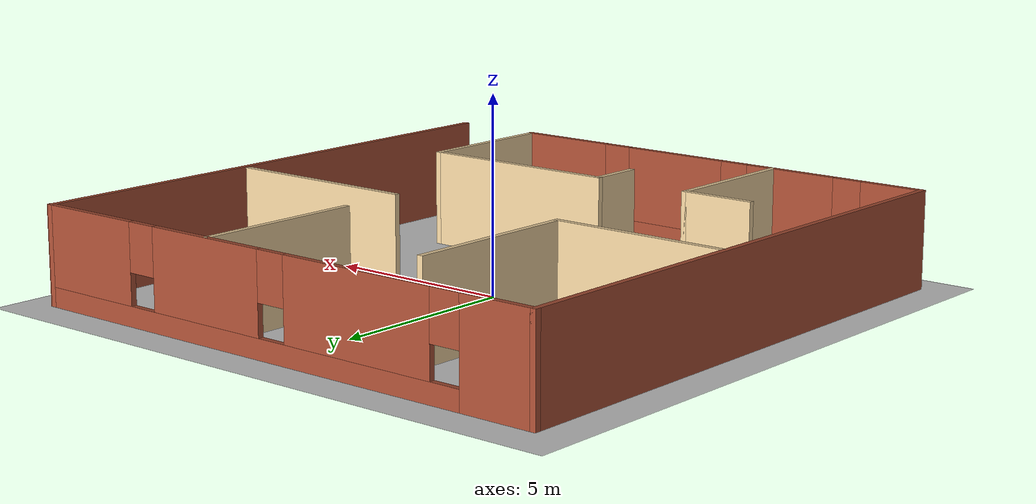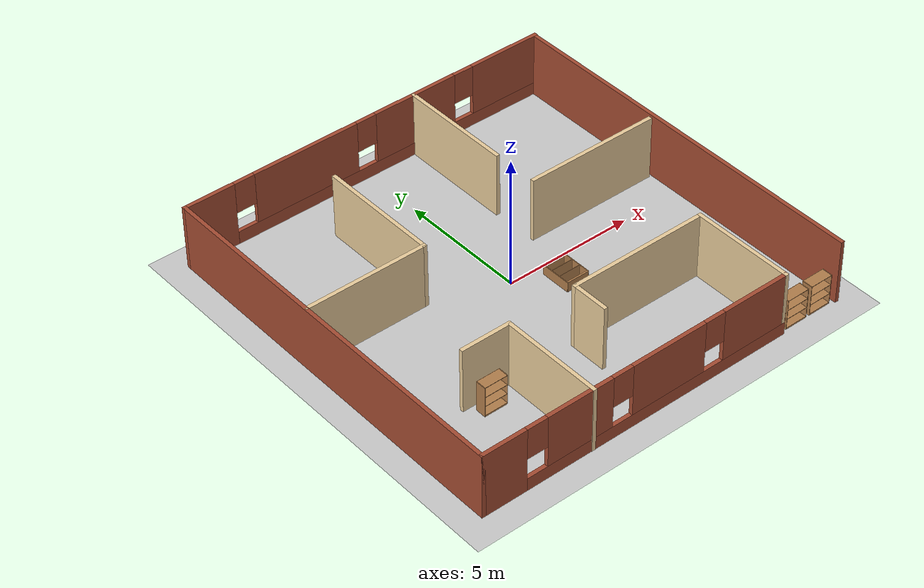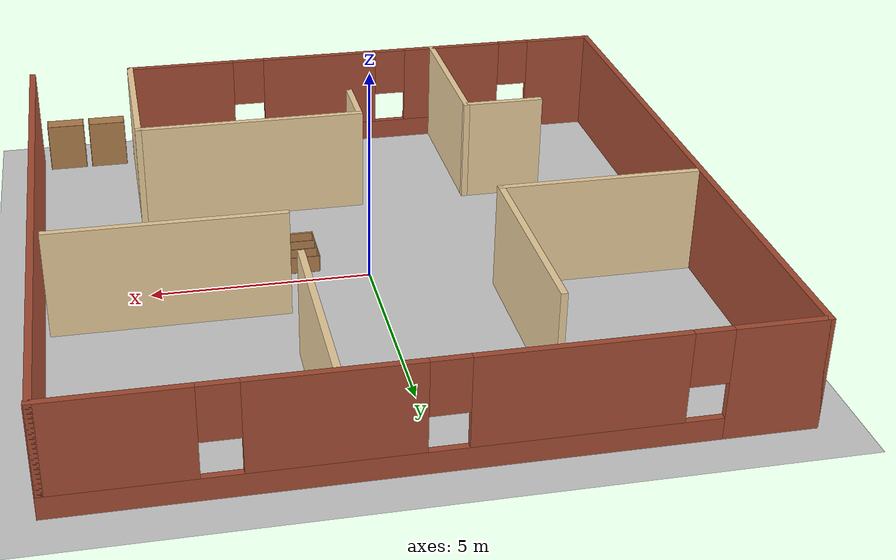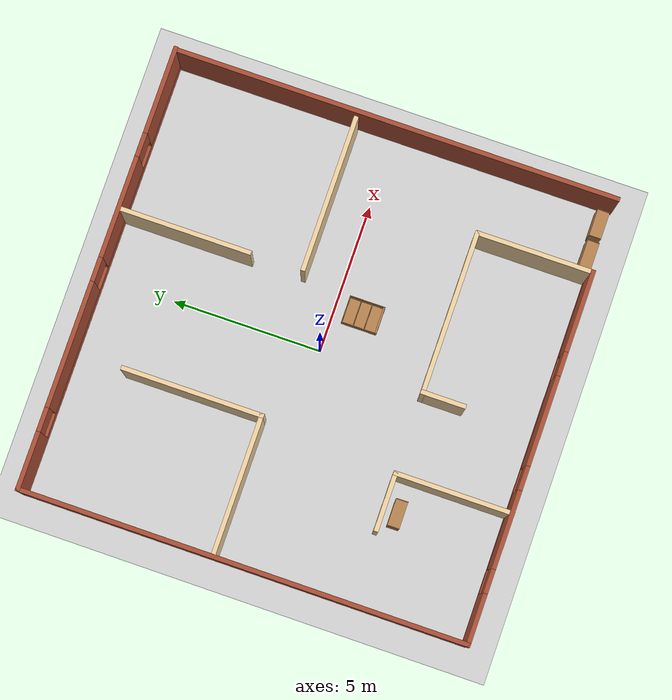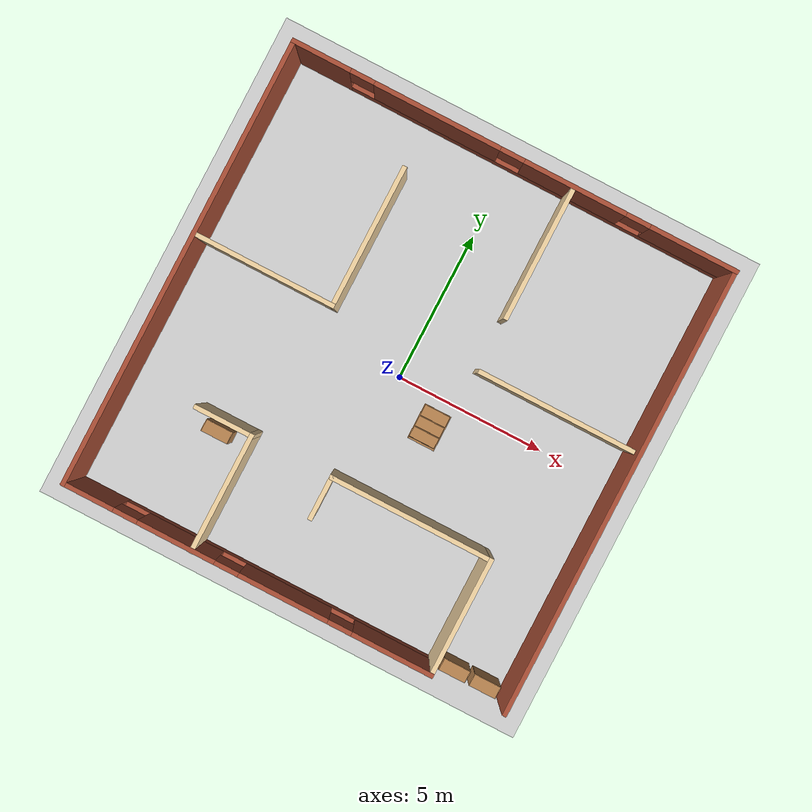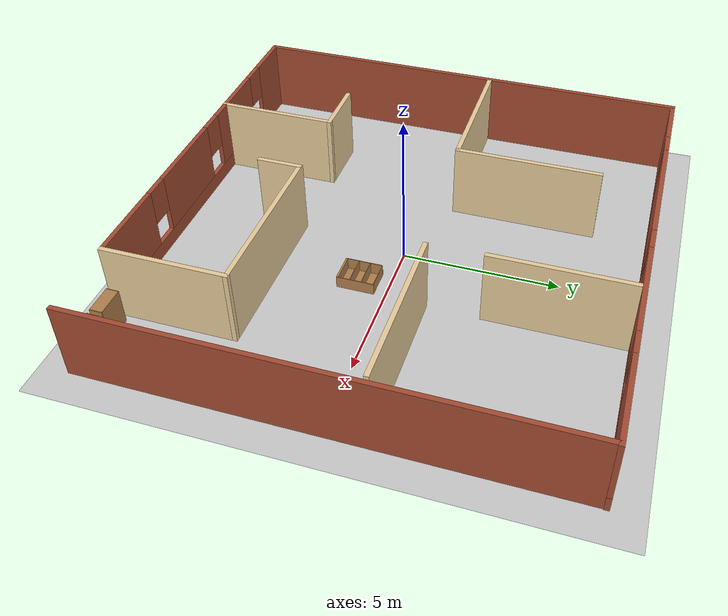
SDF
<sdf version="1.7">
 <world name="default">
  <model name="ground_plane">
   <static>1</static>
   <link name="link">
    <collision name="collision">
     <geometry><plane><normal>0 0 1</normal><size>100 100</size></plane></geometry>
     <surface>
      <contact><collide_bitmask>65535</collide_bitmask></contact>
      <friction><ode><mu>100</mu><mu2>50</mu2></ode></friction>
     </surface>
    </collision>
    <visual name="visual">
     <cast_shadows>0</cast_shadows>
     <geometry><plane><normal>0 0 1</normal><size>100 100</size></plane></geometry>
     <material>
      <script><uri>file://media/materials/scripts/gazebo.material</uri><name>Gazebo/Grey</name></script>
     </material>
    </visual>
   </link>
  </model>
  <model name="bookshelf">
   <static>1</static>
   <link name="link">
    <inertial><mass>1</mass></inertial>
    <collision name="back">
     <pose>0 0.005 0.6 0 -0 0</pose>
     <geometry><box><size>0.9 0.01 1.2</size></box></geometry>
    </collision>
    <visual name="visual1">
     <pose>0 0.005 0.6 0 -0 0</pose>
     <geometry><box><size>0.9 0.01 1.2</size></box></geometry>
     <material>
      <script><uri>file://media/materials/scripts/gazebo.material</uri><name>Gazebo/Wood</name></script>
     </material>
    </visual>
    <collision name="left_side">
     <pose>0.45 -0.195 0.6 0 -0 0</pose>
     <geometry><box><size>0.02 0.4 1.2</size></box></geometry>
    </collision>
    <visual name="visual2">
     <pose>0.45 -0.195 0.6 0 -0 0</pose>
     <geometry><box><size>0.02 0.4 1.2</size></box></geometry>
     <material>
      <script><uri>file://media/materials/scripts/gazebo.material</uri><name>Gazebo/Wood</name></script>
     </material>
    </visual>
    <collision name="right_side">
     <pose>-0.45 -0.195 0.6 0 -0 0</pose>
     <geometry><box><size>0.02 0.4 1.2</size></box></geometry>
    </collision>
    <visual name="visual3">
     <pose>-0.45 -0.195 0.6 0 -0 0</pose>
     <geometry><box><size>0.02 0.4 1.2</size></box></geometry>
     <material>
      <script><uri>file://media/materials/scripts/gazebo.material</uri><name>Gazebo/Wood</name></script>
     </material>
    </visual>
    <collision name="bottom">
     <pose>0 -0.195 0.03 0 -0 0</pose>
     <geometry><box><size>0.88 0.4 0.06</size></box></geometry>
    </collision>
    <visual name="visual4">
     <pose>0 -0.195 0.03 0 -0 0</pose>
     <geometry><box><size>0.88 0.4 0.06</size></box></geometry>
     <material>
      <script><uri>file://media/materials/scripts/gazebo.material</uri><name>Gazebo/Wood</name></script>
     </material>
    </visual>
    <collision name="top">
     <pose>0 -0.195 1.19 0 -0 0</pose>
     <geometry><box><size>0.88 0.4 0.02</size></box></geometry>
    </collision>
    <visual name="visual5">
     <pose>0 -0.195 1.19 0 -0 0</pose>
     <geometry><box><size>0.88 0.4 0.02</size></box></geometry>
     <material>
      <script><uri>file://media/materials/scripts/gazebo.material</uri><name>Gazebo/Wood</name></script>
     </material>
    </visual>
    <collision name="low_shelf">
     <pose>0 -0.195 0.43 0 -0 0</pose>
     <geometry><box><size>0.88 0.4 0.02</size></box></geometry>
    </collision>
    <visual name="visual6">
     <pose>0 -0.195 0.43 0 -0 0</pose>
     <geometry><box><size>0.88 0.4 0.02</size></box></geometry>
     <material>
      <script><uri>file://media/materials/scripts/gazebo.material</uri><name>Gazebo/Wood</name></script>
     </material>
    </visual>
    <collision name="high_shelf">
     <pose>0 -0.195 0.8 0 -0 0</pose>
     <geometry><box><size>0.88 0.4 0.02</size></box></geometry>
    </collision>
    <visual name="visual7">
     <pose>0 -0.195 0.8 0 -0 0</pose>
     <geometry><box><size>0.88 0.4 0.02</size></box></geometry>
     <material>
      <script><uri>file://media/materials/scripts/gazebo.material</uri><name>Gazebo/Wood</name></script>
     </material>
    </visual>
   </link>
   <pose>5.65 -7 0 0 -0 0</pose>
  </model>
  <model name="bookshelf_0">
   <static>1</static>
   <link name="link">
    <inertial><mass>1</mass></inertial>
    <collision name="back">
     <pose>0 0.005 0.6 0 -0 0</pose>
     <geometry><box><size>0.9 0.01 1.2</size></box></geometry>
    </collision>
    <visual name="visual1">
     <pose>0 0.005 0.6 0 -0 0</pose>
     <geometry><box><size>0.9 0.01 1.2</size></box></geometry>
     <material>
      <script><uri>file://media/materials/scripts/gazebo.material</uri><name>Gazebo/Wood</name></script>
     </material>
    </visual>
    <collision name="left_side">
     <pose>0.45 -0.195 0.6 0 -0 0</pose>
     <geometry><box><size>0.02 0.4 1.2</size></box></geometry>
    </collision>
    <visual name="visual2">
     <pose>0.45 -0.195 0.6 0 -0 0</pose>
     <geometry><box><size>0.02 0.4 1.2</size></box></geometry>
     <material>
      <script><uri>file://media/materials/scripts/gazebo.material</uri><name>Gazebo/Wood</name></script>
     </material>
    </visual>
    <collision name="right_side">
     <pose>-0.45 -0.195 0.6 0 -0 0</pose>
     <geometry><box><size>0.02 0.4 1.2</size></box></geometry>
    </collision>
    <visual name="visual3">
     <pose>-0.45 -0.195 0.6 0 -0 0</pose>
     <geometry><box><size>0.02 0.4 1.2</size></box></geometry>
     <material>
      <script><uri>file://media/materials/scripts/gazebo.material</uri><name>Gazebo/Wood</name></script>
     </material>
    </visual>
    <collision name="bottom">
     <pose>0 -0.195 0.03 0 -0 0</pose>
     <geometry><box><size>0.88 0.4 0.06</size></box></geometry>
    </collision>
    <visual name="visual4">
     <pose>0 -0.195 0.03 0 -0 0</pose>
     <geometry><box><size>0.88 0.4 0.06</size></box></geometry>
     <material>
      <script><uri>file://media/materials/scripts/gazebo.material</uri><name>Gazebo/Wood</name></script>
     </material>
    </visual>
    <collision name="top">
     <pose>0 -0.195 1.19 0 -0 0</pose>
     <geometry><box><size>0.88 0.4 0.02</size></box></geometry>
    </collision>
    <visual name="visual5">
     <pose>0 -0.195 1.19 0 -0 0</pose>
     <geometry><box><size>0.88 0.4 0.02</size></box></geometry>
     <material>
      <script><uri>file://media/materials/scripts/gazebo.material</uri><name>Gazebo/Wood</name></script>
     </material>
    </visual>
    <collision name="low_shelf">
     <pose>0 -0.195 0.43 0 -0 0</pose>
     <geometry><box><size>0.88 0.4 0.02</size></box></geometry>
    </collision>
    <visual name="visual6">
     <pose>0 -0.195 0.43 0 -0 0</pose>
     <geometry><box><size>0.88 0.4 0.02</size></box></geometry>
     <material>
      <script><uri>file://media/materials/scripts/gazebo.material</uri><name>Gazebo/Wood</name></script>
     </material>
    </visual>
    <collision name="high_shelf">
     <pose>0 -0.195 0.8 0 -0 0</pose>
     <geometry><box><size>0.88 0.4 0.02</size></box></geometry>
    </collision>
    <visual name="visual7">
     <pose>0 -0.195 0.8 0 -0 0</pose>
     <geometry><box><size>0.88 0.4 0.02</size></box></geometry>
     <material>
      <script><uri>file://media/materials/scripts/gazebo.material</uri><name>Gazebo/Wood</name></script>
     </material>
    </visual>
   </link>
   <pose>6.7 -7 0 0 -0 0</pose>
  </model>
  <model name="gMaze7">
   <link name="Wall_0">
    <pose>0 7.42919 0 0 -0 0</pose>
    <visual name="Wall_0_Visual_0">
     <pose>-6.50945 0 1.25 0 -0 0</pose>
     <geometry><box><size>1.98109 0.15 2.5</size></box></geometry>
     <material>
      <script><uri>file://media/materials/scripts/gazebo.material</uri><name>Gazebo/Bricks</name></script>
      <ambient>1 1 1 1</ambient>
     </material>
     <meta><layer>0</layer></meta>
    </visual>
    <collision name="Wall_0_Collision_0">
     <geometry><box><size>1.98109 0.15 2.5</size></box></geometry>
     <pose>-6.50945 0 1.25 0 -0 0</pose>
    </collision>
    <visual name="Wall_0_Visual_1">
     <pose>0.990545 0 0.25 0 -0 0</pose>
     <geometry><box><size>13.0189 0.15 0.5</size></box></geometry>
     <material>
      <script><uri>file://media/materials/scripts/gazebo.material</uri><name>Gazebo/Bricks</name></script>
      <ambient>1 1 1 1</ambient>
     </material>
     <meta><layer>0</layer></meta>
    </visual>
    <collision name="Wall_0_Collision_1">
     <geometry><box><size>13.0189 0.15 0.5</size></box></geometry>
     <pose>0.990545 0 0.25 0 -0 0</pose>
    </collision>
    <visual name="Wall_0_Visual_2">
     <pose>-2.60363 0 1.5 0 -0 0</pose>
     <geometry><box><size>4.23056 0.15 2</size></box></geometry>
     <material>
      <script><uri>file://media/materials/scripts/gazebo.material</uri><name>Gazebo/Bricks</name></script>
      <ambient>1 1 1 1</ambient>
     </material>
     <meta><layer>0</layer></meta>
    </visual>
    <collision name="Wall_0_Collision_2">
     <geometry><box><size>4.23056 0.15 2</size></box></geometry>
     <pose>-2.60363 0 1.5 0 -0 0</pose>
    </collision>
    <visual name="Wall_0_Visual_3">
     <pose>2.02238 0 1.5 0 -0 0</pose>
     <geometry><box><size>3.42145 0.15 2</size></box></geometry>
     <material>
      <script><uri>file://media/materials/scripts/gazebo.material</uri><name>Gazebo/Bricks</name></script>
      <ambient>1 1 1 1</ambient>
     </material>
     <meta><layer>0</layer></meta>
    </visual>
    <collision name="Wall_0_Collision_3">
     <geometry><box><size>3.42145 0.15 2</size></box></geometry>
     <pose>2.02238 0 1.5 0 -0 0</pose>
    </collision>
    <visual name="Wall_0_Visual_4">
     <pose>6.01655 0 1.5 0 -0 0</pose>
     <geometry><box><size>2.9669 0.15 2</size></box></geometry>
     <material>
      <script><uri>file://media/materials/scripts/gazebo.material</uri><name>Gazebo/Bricks</name></script>
      <ambient>1 1 1 1</ambient>
     </material>
     <meta><layer>0</layer></meta>
    </visual>
    <collision name="Wall_0_Collision_4">
     <geometry><box><size>2.9669 0.15 2</size></box></geometry>
     <pose>6.01655 0 1.5 0 -0 0</pose>
    </collision>
    <visual name="Wall_0_Visual_5">
     <pose>-5.11891 0 1.9 0 -0 0</pose>
     <geometry><box><size>0.8 0.15 1.2</size></box></geometry>
     <material>
      <script><uri>file://media/materials/scripts/gazebo.material</uri><name>Gazebo/Bricks</name></script>
      <ambient>1 1 1 1</ambient>
     </material>
     <meta><layer>0</layer></meta>
    </visual>
    <collision name="Wall_0_Collision_5">
     <geometry><box><size>0.8 0.15 1.2</size></box></geometry>
     <pose>-5.11891 0 1.9 0 -0 0</pose>
    </collision>
    <visual name="Wall_0_Visual_6">
     <pose>-0.088347 0 1.9 0 -0 0</pose>
     <geometry><box><size>0.8 0.15 1.2</size></box></geometry>
     <material>
      <script><uri>file://media/materials/scripts/gazebo.material</uri><name>Gazebo/Bricks</name></script>
      <ambient>1 1 1 1</ambient>
     </material>
     <meta><layer>0</layer></meta>
    </visual>
    <collision name="Wall_0_Collision_6">
     <geometry><box><size>0.8 0.15 1.2</size></box></geometry>
     <pose>-0.088347 0 1.9 0 -0 0</pose>
    </collision>
    <visual name="Wall_0_Visual_7">
     <pose>4.1331 0 1.9 0 -0 0</pose>
     <geometry><box><size>0.8 0.15 1.2</size></box></geometry>
     <material>
      <script><uri>file://media/materials/scripts/gazebo.material</uri><name>Gazebo/Bricks</name></script>
      <ambient>1 1 1 1</ambient>
     </material>
     <meta><layer>0</layer></meta>
    </visual>
    <collision name="Wall_0_Collision_7">
     <geometry><box><size>0.8 0.15 1.2</size></box></geometry>
     <pose>4.1331 0 1.9 0 -0 0</pose>
    </collision>
   </link>
   <link name="Wall_1">
    <collision name="Wall_1_Collision">
     <geometry><box><size>15 0.15 2.5</size></box></geometry>
     <pose>0 0 1.25 0 -0 0</pose>
    </collision>
    <visual name="Wall_1_Visual">
     <pose>0 0 1.25 0 -0 0</pose>
     <geometry><box><size>15 0.15 2.5</size></box></geometry>
     <material>
      <script><uri>file://media/materials/scripts/gazebo.material</uri><name>Gazebo/Bricks</name></script>
      <ambient>1 1 1 1</ambient>
     </material>
     <meta><layer>0</layer></meta>
    </visual>
    <pose>7.40489 0.00419 0 0 -0 -1.5708</pose>
   </link>
   <link name="Wall_3">
    <collision name="Wall_3_Collision">
     <geometry><box><size>15 0.15 2.5</size></box></geometry>
     <pose>0 0 1.25 0 -0 0</pose>
    </collision>
    <visual name="Wall_3_Visual">
     <pose>0 0 1.25 0 -0 0</pose>
     <geometry><box><size>15 0.15 2.5</size></box></geometry>
     <material>
      <script><uri>file://media/materials/scripts/gazebo.material</uri><name>Gazebo/Bricks</name></script>
      <ambient>1 1 1 1</ambient>
     </material>
     <meta><layer>0</layer></meta>
    </visual>
    <pose>-7.425 0.00419 0 0 -0 -1.5708</pose>
   </link>
   <link name="Wall_4">
    <pose>-1.25 -7.42081 0 0 -0 0</pose>
    <visual name="Wall_4_Visual_0">
     <pose>-5.37558 0 1.25 0 -0 0</pose>
     <geometry><box><size>1.74884 0.15 2.5</size></box></geometry>
     <material>
      <script><uri>file://media/materials/scripts/gazebo.material</uri><name>Gazebo/Bricks</name></script>
      <ambient>1 1 1 1</ambient>
     </material>
     <meta><layer>0</layer></meta>
    </visual>
    <collision name="Wall_4_Collision_0">
     <geometry><box><size>1.74884 0.15 2.5</size></box></geometry>
     <pose>-5.37558 0 1.25 0 -0 0</pose>
    </collision>
    <visual name="Wall_4_Visual_1">
     <pose>0.87442 0 0.25 0 -0 0</pose>
     <geometry><box><size>10.7512 0.15 0.5</size></box></geometry>
     <material>
      <script><uri>file://media/materials/scripts/gazebo.material</uri><name>Gazebo/Bricks</name></script>
      <ambient>1 1 1 1</ambient>
     </material>
     <meta><layer>0</layer></meta>
    </visual>
    <collision name="Wall_4_Collision_1">
     <geometry><box><size>10.7512 0.15 0.5</size></box></geometry>
     <pose>0.87442 0 0.25 0 -0 0</pose>
    </collision>
    <visual name="Wall_4_Visual_2">
     <pose>-2.40199 0 1.5 0 -0 0</pose>
     <geometry><box><size>2.59834 0.15 2</size></box></geometry>
     <material>
      <script><uri>file://media/materials/scripts/gazebo.material</uri><name>Gazebo/Bricks</name></script>
      <ambient>1 1 1 1</ambient>
     </material>
     <meta><layer>0</layer></meta>
    </visual>
    <collision name="Wall_4_Collision_2">
     <geometry><box><size>2.59834 0.15 2</size></box></geometry>
     <pose>-2.40199 0 1.5 0 -0 0</pose>
    </collision>
    <visual name="Wall_4_Visual_3">
     <pose>1.19683 0 1.5 0 -0 0</pose>
     <geometry><box><size>2.99931 0.15 2</size></box></geometry>
     <material>
      <script><uri>file://media/materials/scripts/gazebo.material</uri><name>Gazebo/Bricks</name></script>
      <ambient>1 1 1 1</ambient>
     </material>
     <meta><layer>0</layer></meta>
    </visual>
    <collision name="Wall_4_Collision_3">
     <geometry><box><size>2.99931 0.15 2</size></box></geometry>
     <pose>1.19683 0 1.5 0 -0 0</pose>
    </collision>
    <visual name="Wall_4_Visual_4">
     <pose>4.87324 0 1.5 0 -0 0</pose>
     <geometry><box><size>2.75352 0.15 2</size></box></geometry>
     <material>
      <script><uri>file://media/materials/scripts/gazebo.material</uri><name>Gazebo/Bricks</name></script>
      <ambient>1 1 1 1</ambient>
     </material>
     <meta><layer>0</layer></meta>
    </visual>
    <collision name="Wall_4_Collision_4">
     <geometry><box><size>2.75352 0.15 2</size></box></geometry>
     <pose>4.87324 0 1.5 0 -0 0</pose>
    </collision>
    <visual name="Wall_4_Visual_5">
     <pose>-4.10116 0 1.9 0 -0 0</pose>
     <geometry><box><size>0.8 0.15 1.2</size></box></geometry>
     <material>
      <script><uri>file://media/materials/scripts/gazebo.material</uri><name>Gazebo/Bricks</name></script>
      <ambient>1 1 1 1</ambient>
     </material>
     <meta><layer>0</layer></meta>
    </visual>
    <collision name="Wall_4_Collision_5">
     <geometry><box><size>0.8 0.15 1.2</size></box></geometry>
     <pose>-4.10116 0 1.9 0 -0 0</pose>
    </collision>
    <visual name="Wall_4_Visual_6">
     <pose>-0.702821 0 1.9 0 -0 0</pose>
     <geometry><box><size>0.8 0.15 1.2</size></box></geometry>
     <material>
      <script><uri>file://media/materials/scripts/gazebo.material</uri><name>Gazebo/Bricks</name></script>
      <ambient>1 1 1 1</ambient>
     </material>
     <meta><layer>0</layer></meta>
    </visual>
    <collision name="Wall_4_Collision_6">
     <geometry><box><size>0.8 0.15 1.2</size></box></geometry>
     <pose>-0.702821 0 1.9 0 -0 0</pose>
    </collision>
    <visual name="Wall_4_Visual_7">
     <pose>3.09648 0 1.9 0 -0 0</pose>
     <geometry><box><size>0.8 0.15 1.2</size></box></geometry>
     <material>
      <script><uri>file://media/materials/scripts/gazebo.material</uri><name>Gazebo/Bricks</name></script>
      <ambient>1 1 1 1</ambient>
     </material>
     <meta><layer>0</layer></meta>
    </visual>
    <collision name="Wall_4_Collision_7">
     <geometry><box><size>0.8 0.15 1.2</size></box></geometry>
     <pose>3.09648 0 1.9 0 -0 0</pose>
    </collision>
   </link>
   <link name="Wall_56">
    <collision name="Wall_56_Collision">
     <geometry><box><size>4 0.15 2.5</size></box></geometry>
     <pose>0 0 1.25 0 -0 0</pose>
    </collision>
    <visual name="Wall_56_Visual">
     <pose>0 0 1.25 0 -0 0</pose>
     <geometry><box><size>4 0.15 2.5</size></box></geometry>
     <material>
      <script><uri>file://media/materials/scripts/gazebo.material</uri><name>Gazebo/Grey</name></script>
      <ambient>0.921569 0.807843 0.615686 1</ambient>
     </material>
     <meta><layer>0</layer></meta>
    </visual>
    <pose>4.925 -5.49581 0 0 -0 1.5708</pose>
   </link>
   <link name="Wall_57">
    <collision name="Wall_57_Collision">
     <geometry><box><size>5.5 0.15 2.5</size></box></geometry>
     <pose>0 0 1.25 0 -0 0</pose>
    </collision>
    <visual name="Wall_57_Visual">
     <pose>0 0 1.25 0 -0 0</pose>
     <geometry><box><size>5.5 0.15 2.5</size></box></geometry>
     <material>
      <script><uri>file://media/materials/scripts/gazebo.material</uri><name>Gazebo/Grey</name></script>
      <ambient>0.921569 0.807843 0.615686 1</ambient>
     </material>
     <meta><layer>0</layer></meta>
    </visual>
    <pose>2.25 -3.57081 0 0 -0 3.14159</pose>
   </link>
   <link name="Wall_58">
    <collision name="Wall_58_Collision">
     <geometry><box><size>1.5 0.15 2.5</size></box></geometry>
     <pose>0 0 1.25 0 -0 0</pose>
    </collision>
    <visual name="Wall_58_Visual">
     <pose>0 0 1.25 0 -0 0</pose>
     <geometry><box><size>1.5 0.15 2.5</size></box></geometry>
     <material>
      <script><uri>file://media/materials/scripts/gazebo.material</uri><name>Gazebo/Grey</name></script>
      <ambient>0.921569 0.807843 0.615686 1</ambient>
     </material>
     <meta><layer>0</layer></meta>
    </visual>
    <pose>-0.425 -4.24581 0 0 -0 -1.5708</pose>
   </link>
   <link name="Wall_60">
    <collision name="Wall_60_Collision">
     <geometry><box><size>4 0.15 2.5</size></box></geometry>
     <pose>0 0 1.25 0 -0 0</pose>
    </collision>
    <visual name="Wall_60_Visual">
     <pose>0 0 1.25 0 -0 0</pose>
     <geometry><box><size>4 0.15 2.5</size></box></geometry>
     <material>
      <script><uri>file://media/materials/scripts/gazebo.material</uri><name>Gazebo/Grey</name></script>
      <ambient>0.921569 0.807843 0.615686 1</ambient>
     </material>
     <meta><layer>0</layer></meta>
    </visual>
    <pose>-3.11372 -5.50419 0 0 -0 1.5708</pose>
   </link>
   <link name="Wall_61">
    <collision name="Wall_61_Collision">
     <geometry><box><size>2 0.15 2.5</size></box></geometry>
     <pose>0 0 1.25 0 -0 0</pose>
    </collision>
    <visual name="Wall_61_Visual">
     <pose>0 0 1.25 0 -0 0</pose>
     <geometry><box><size>2 0.15 2.5</size></box></geometry>
     <material>
      <script><uri>file://media/materials/scripts/gazebo.material</uri><name>Gazebo/Grey</name></script>
      <ambient>0.921569 0.807843 0.615686 1</ambient>
     </material>
     <meta><layer>0</layer></meta>
    </visual>
    <pose>-4.03872 -3.57919 0 0 -0 3.14159</pose>
   </link>
   <link name="Wall_64">
    <collision name="Wall_64_Collision">
     <geometry><box><size>4.75 0.15 2.5</size></box></geometry>
     <pose>0 0 1.25 0 -0 0</pose>
    </collision>
    <visual name="Wall_64_Visual">
     <pose>0 0 1.25 0 -0 0</pose>
     <geometry><box><size>4.75 0.15 2.5</size></box></geometry>
     <material>
      <script><uri>file://media/materials/scripts/gazebo.material</uri><name>Gazebo/Grey</name></script>
      <ambient>0.921569 0.807843 0.615686 1</ambient>
     </material>
     <meta><layer>0</layer></meta>
    </visual>
    <pose>-5.07035 0.978534 0 0 -0 0</pose>
   </link>
   <link name="Wall_65">
    <collision name="Wall_65_Collision">
     <geometry><box><size>4.75 0.15 2.5</size></box></geometry>
     <pose>0 0 1.25 0 -0 0</pose>
    </collision>
    <visual name="Wall_65_Visual">
     <pose>0 0 1.25 0 -0 0</pose>
     <geometry><box><size>4.75 0.15 2.5</size></box></geometry>
     <material>
      <script><uri>file://media/materials/scripts/gazebo.material</uri><name>Gazebo/Grey</name></script>
      <ambient>0.921569 0.807843 0.615686 1</ambient>
     </material>
     <meta><layer>0</layer></meta>
    </visual>
    <pose>-2.77035 3.27853 0 0 -0 1.5708</pose>
   </link>
   <link name="Wall_67">
    <collision name="Wall_67_Collision">
     <geometry><box><size>5.25 0.15 2.5</size></box></geometry>
     <pose>0 0 1.25 0 -0 0</pose>
    </collision>
    <visual name="Wall_67_Visual">
     <pose>0 0 1.25 0 -0 0</pose>
     <geometry><box><size>5.25 0.15 2.5</size></box></geometry>
     <material>
      <script><uri>file://media/materials/scripts/gazebo.material</uri><name>Gazebo/Grey</name></script>
      <ambient>0.921569 0.807843 0.615686 1</ambient>
     </material>
     <meta><layer>0</layer></meta>
    </visual>
    <pose>4.60756 1.25996 0 0 -0 0</pose>
   </link>
   <link name="Wall_69">
    <collision name="Wall_69_Collision">
     <geometry><box><size>4.5 0.15 2.5</size></box></geometry>
     <pose>0 0 1.25 0 -0 0</pose>
    </collision>
    <visual name="Wall_69_Visual">
     <pose>0 0 1.25 0 -0 0</pose>
     <geometry><box><size>4.5 0.15 2.5</size></box></geometry>
     <material>
      <script><uri>file://media/materials/scripts/gazebo.material</uri><name>Gazebo/Grey</name></script>
      <ambient>0.921569 0.807843 0.615686 1</ambient>
     </material>
     <meta><layer>0</layer></meta>
    </visual>
    <pose>1.9872 5.22908 0 0 -0 1.5708</pose>
   </link>
   <static>1</static>
  </model>
  <model name="bookshelf_1">
   <static>1</static>
   <link name="link">
    <inertial><mass>1</mass></inertial>
    <collision name="back">
     <pose>0 0.005 0.6 0 -0 0</pose>
     <geometry><box><size>0.9 0.01 1.2</size></box></geometry>
    </collision>
    <visual name="visual1">
     <pose>0 0.005 0.6 0 -0 0</pose>
     <geometry><box><size>0.9 0.01 1.2</size></box></geometry>
     <material>
      <script><uri>file://media/materials/scripts/gazebo.material</uri><name>Gazebo/Wood</name></script>
     </material>
    </visual>
    <collision name="left_side">
     <pose>0.45 -0.195 0.6 0 -0 0</pose>
     <geometry><box><size>0.02 0.4 1.2</size></box></geometry>
    </collision>
    <visual name="visual2">
     <pose>0.45 -0.195 0.6 0 -0 0</pose>
     <geometry><box><size>0.02 0.4 1.2</size></box></geometry>
     <material>
      <script><uri>file://media/materials/scripts/gazebo.material</uri><name>Gazebo/Wood</name></script>
     </material>
    </visual>
    <collision name="right_side">
     <pose>-0.45 -0.195 0.6 0 -0 0</pose>
     <geometry><box><size>0.02 0.4 1.2</size></box></geometry>
    </collision>
    <visual name="visual3">
     <pose>-0.45 -0.195 0.6 0 -0 0</pose>
     <geometry><box><size>0.02 0.4 1.2</size></box></geometry>
     <material>
      <script><uri>file://media/materials/scripts/gazebo.material</uri><name>Gazebo/Wood</name></script>
     </material>
    </visual>
    <collision name="bottom">
     <pose>0 -0.195 0.03 0 -0 0</pose>
     <geometry><box><size>0.88 0.4 0.06</size></box></geometry>
    </collision>
    <visual name="visual4">
     <pose>0 -0.195 0.03 0 -0 0</pose>
     <geometry><box><size>0.88 0.4 0.06</size></box></geometry>
     <material>
      <script><uri>file://media/materials/scripts/gazebo.material</uri><name>Gazebo/Wood</name></script>
     </material>
    </visual>
    <collision name="top">
     <pose>0 -0.195 1.19 0 -0 0</pose>
     <geometry><box><size>0.88 0.4 0.02</size></box></geometry>
    </collision>
    <visual name="visual5">
     <pose>0 -0.195 1.19 0 -0 0</pose>
     <geometry><box><size>0.88 0.4 0.02</size></box></geometry>
     <material>
      <script><uri>file://media/materials/scripts/gazebo.material</uri><name>Gazebo/Wood</name></script>
     </material>
    </visual>
    <collision name="low_shelf">
     <pose>0 -0.195 0.43 0 -0 0</pose>
     <geometry><box><size>0.88 0.4 0.02</size></box></geometry>
    </collision>
    <visual name="visual6">
     <pose>0 -0.195 0.43 0 -0 0</pose>
     <geometry><box><size>0.88 0.4 0.02</size></box></geometry>
     <material>
      <script><uri>file://media/materials/scripts/gazebo.material</uri><name>Gazebo/Wood</name></script>
     </material>
    </visual>
    <collision name="high_shelf">
     <pose>0 -0.195 0.8 0 -0 0</pose>
     <geometry><box><size>0.88 0.4 0.02</size></box></geometry>
    </collision>
    <visual name="visual7">
     <pose>0 -0.195 0.8 0 -0 0</pose>
     <geometry><box><size>0.88 0.4 0.02</size></box></geometry>
     <material>
      <script><uri>file://media/materials/scripts/gazebo.material</uri><name>Gazebo/Wood</name></script>
     </material>
    </visual>
   </link>
   <pose>-4.21596 -3.86789 0 0 -0 0</pose>
  </model>
  <model name="bookshelf_3">
   <static>1</static>
   <link name="link">
    <inertial><mass>1</mass></inertial>
    <collision name="back">
     <pose>0 0.005 0.6 0 -0 0</pose>
     <geometry><box><size>0.9 0.01 1.2</size></box></geometry>
    </collision>
    <visual name="visual1">
     <pose>0 0.005 0.6 0 -0 0</pose>
     <geometry><box><size>0.9 0.01 1.2</size></box></geometry>
     <material>
      <script><uri>file://media/materials/scripts/gazebo.material</uri><name>Gazebo/Wood</name></script>
     </material>
    </visual>
    <collision name="left_side">
     <pose>0.45 -0.195 0.6 0 -0 0</pose>
     <geometry><box><size>0.02 0.4 1.2</size></box></geometry>
    </collision>
    <visual name="visual2">
     <pose>0.45 -0.195 0.6 0 -0 0</pose>
     <geometry><box><size>0.02 0.4 1.2</size></box></geometry>
     <material>
      <script><uri>file://media/materials/scripts/gazebo.material</uri><name>Gazebo/Wood</name></script>
     </material>
    </visual>
    <collision name="right_side">
     <pose>-0.45 -0.195 0.6 0 -0 0</pose>
     <geometry><box><size>0.02 0.4 1.2</size></box></geometry>
    </collision>
    <visual name="visual3">
     <pose>-0.45 -0.195 0.6 0 -0 0</pose>
     <geometry><box><size>0.02 0.4 1.2</size></box></geometry>
     <material>
      <script><uri>file://media/materials/scripts/gazebo.material</uri><name>Gazebo/Wood</name></script>
     </material>
    </visual>
    <collision name="bottom">
     <pose>0 -0.195 0.03 0 -0 0</pose>
     <geometry><box><size>0.88 0.4 0.06</size></box></geometry>
    </collision>
    <visual name="visual4">
     <pose>0 -0.195 0.03 0 -0 0</pose>
     <geometry><box><size>0.88 0.4 0.06</size></box></geometry>
     <material>
      <script><uri>file://media/materials/scripts/gazebo.material</uri><name>Gazebo/Wood</name></script>
     </material>
    </visual>
    <collision name="top">
     <pose>0 -0.195 1.19 0 -0 0</pose>
     <geometry><box><size>0.88 0.4 0.02</size></box></geometry>
    </collision>
    <visual name="visual5">
     <pose>0 -0.195 1.19 0 -0 0</pose>
     <geometry><box><size>0.88 0.4 0.02</size></box></geometry>
     <material>
      <script><uri>file://media/materials/scripts/gazebo.material</uri><name>Gazebo/Wood</name></script>
     </material>
    </visual>
    <collision name="low_shelf">
     <pose>0 -0.195 0.43 0 -0 0</pose>
     <geometry><box><size>0.88 0.4 0.02</size></box></geometry>
    </collision>
    <visual name="visual6">
     <pose>0 -0.195 0.43 0 -0 0</pose>
     <geometry><box><size>0.88 0.4 0.02</size></box></geometry>
     <material>
      <script><uri>file://media/materials/scripts/gazebo.material</uri><name>Gazebo/Wood</name></script>
     </material>
    </visual>
    <collision name="high_shelf">
     <pose>0 -0.195 0.8 0 -0 0</pose>
     <geometry><box><size>0.88 0.4 0.02</size></box></geometry>
    </collision>
    <visual name="visual7">
     <pose>0 -0.195 0.8 0 -0 0</pose>
     <geometry><box><size>0.88 0.4 0.02</size></box></geometry>
     <material>
      <script><uri>file://media/materials/scripts/gazebo.material</uri><name>Gazebo/Wood</name></script>
     </material>
    </visual>
   </link>
   <pose>1.54625 -1.54881 0.035033 -1.57185 0 0</pose>
  </model>
 </world>
</sdf>
